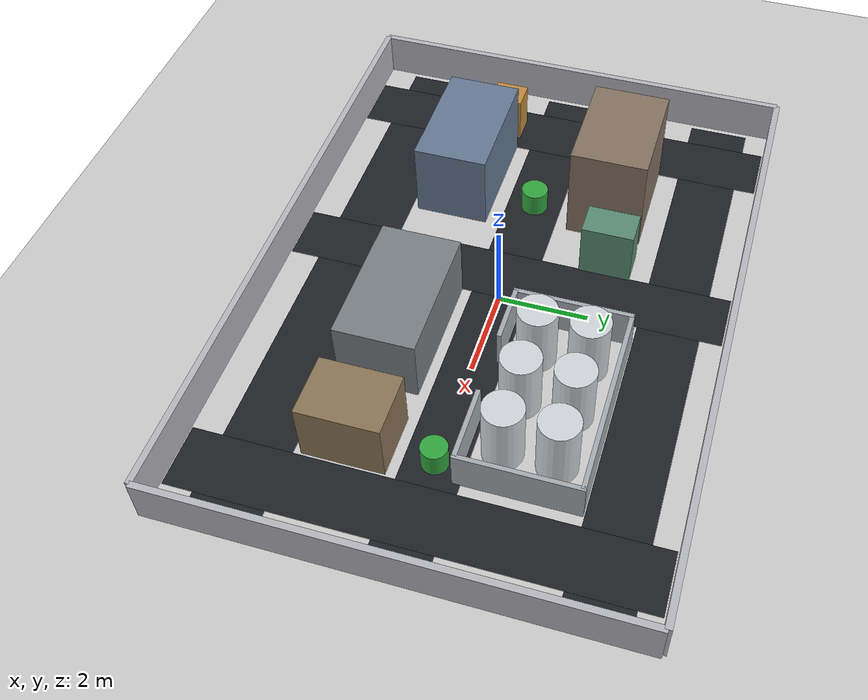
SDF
<?xml version="1.0"?>
<sdf version="1.6">
  <world name="landerpi_city_industrial_world">
    <include><uri>model://sun</uri></include>
    <include><uri>model://ground_plane</uri></include>
    <physics type="ode">
      <real_time_update_rate>1000</real_time_update_rate>
      <max_step_size>0.001</max_step_size>
    </physics>
    <gui fullscreen="0">
      <camera name="city_overview"><pose>0 -13 14 0 0.72 1.57</pose></camera>
    </gui>

    <!-- Asphalt strips are visual landmarks; LiDAR mapping uses the raised geometry below. -->
    <model name="roads"><static>true</static><link name="link">
      <visual name="south_road"><pose>0 -3.5 0.006 0 0 0</pose><geometry><box><size>13.6 1.5 0.01</size></box></geometry><material><ambient>0.12 0.13 0.15 1</ambient></material></visual>
      <visual name="middle_road"><pose>0 0 0.007 0 0 0</pose><geometry><box><size>13.6 1.25 0.01</size></box></geometry><material><ambient>0.12 0.13 0.15 1</ambient></material></visual>
      <visual name="north_road"><pose>0 3.75 0.006 0 0 0</pose><geometry><box><size>13.6 1.35 0.01</size></box></geometry><material><ambient>0.12 0.13 0.15 1</ambient></material></visual>
      <visual name="west_road"><pose>-5.55 0 0.008 0 0 0</pose><geometry><box><size>1.35 9.8 0.01</size></box></geometry><material><ambient>0.12 0.13 0.15 1</ambient></material></visual>
      <visual name="central_road"><pose>-0.7 0 0.009 0 0 0</pose><geometry><box><size>1.30 9.8 0.01</size></box></geometry><material><ambient>0.12 0.13 0.15 1</ambient></material></visual>
      <visual name="east_road"><pose>5.65 0 0.008 0 0 0</pose><geometry><box><size>1.35 9.8 0.01</size></box></geometry><material><ambient>0.12 0.13 0.15 1</ambient></material></visual>
    </link></model>

    <!-- Outer city boundary. -->
    <model name="north_boundary"><static>true</static><pose>0 5 0.5 0 0 0</pose><link name="link"><collision name="c"><geometry><box><size>14 0.14 1.0</size></box></geometry></collision><visual name="v"><geometry><box><size>14 0.14 1.0</size></box></geometry><material><ambient>0.72 0.72 0.75 1</ambient></material></visual></link></model>
    <model name="south_boundary"><static>true</static><pose>0 -5 0.5 0 0 0</pose><link name="link"><collision name="c"><geometry><box><size>14 0.14 1.0</size></box></geometry></collision><visual name="v"><geometry><box><size>14 0.14 1.0</size></box></geometry><material><ambient>0.72 0.72 0.75 1</ambient></material></visual></link></model>
    <model name="east_boundary"><static>true</static><pose>7 0 0.5 0 0 0</pose><link name="link"><collision name="c"><geometry><box><size>0.14 10 1.0</size></box></geometry></collision><visual name="v"><geometry><box><size>0.14 10 1.0</size></box></geometry><material><ambient>0.72 0.72 0.75 1</ambient></material></visual></link></model>
    <model name="west_boundary"><static>true</static><pose>-7 0 0.5 0 0 0</pose><link name="link"><collision name="c"><geometry><box><size>0.14 10 1.0</size></box></geometry></collision><visual name="v"><geometry><box><size>0.14 10 1.0</size></box></geometry><material><ambient>0.72 0.72 0.75 1</ambient></material></visual></link></model>

    <!-- Urban district: building footprints create the strong black contours in RViz. -->
    <model name="office_west_south"><static>true</static><pose>-3.55 -1.78 0.9 0 0 0</pose><link name="link"><collision name="c"><geometry><box><size>2.75 1.65 1.8</size></box></geometry></collision><visual name="v"><geometry><box><size>2.75 1.65 1.8</size></box></geometry><material><ambient>0.40 0.48 0.58 1</ambient></material></visual></link></model>
    <model name="office_west_north"><static>true</static><pose>-3.70 1.75 1.15 0 0 0</pose><link name="link"><collision name="c"><geometry><box><size>2.45 1.70 2.3</size></box></geometry></collision><visual name="v"><geometry><box><size>2.45 1.70 2.3</size></box></geometry><material><ambient>0.52 0.45 0.38 1</ambient></material></visual></link></model>
    <model name="warehouse_center_south"><static>true</static><pose>1.45 -1.72 0.75 0 0 0</pose><link name="link"><collision name="c"><geometry><box><size>3.00 1.75 1.5</size></box></geometry></collision><visual name="v"><geometry><box><size>3.00 1.75 1.5</size></box></geometry><material><ambient>0.48 0.50 0.52 1</ambient></material></visual></link></model>
    <model name="warehouse_east_south"><static>true</static><pose>4.25 -1.72 0.7 0 0 0</pose><link name="link"><collision name="c"><geometry><box><size>1.35 1.75 1.4</size></box></geometry></collision><visual name="v"><geometry><box><size>1.35 1.75 1.4</size></box></geometry><material><ambient>0.55 0.46 0.34 1</ambient></material></visual></link></model>

    <!-- Small roadside structures create varied map outlines. -->
    <model name="shop_1"><static>true</static><pose>-5.55 -1.35 0.55 0 0 0</pose><link name="link"><collision name="c"><geometry><box><size>0.65 0.75 1.1</size></box></geometry></collision><visual name="v"><geometry><box><size>0.65 0.75 1.1</size></box></geometry><material><ambient>0.76 0.55 0.25 1</ambient></material></visual></link></model>
    <model name="shop_2"><static>true</static><pose>-5.55 1.30 0.55 0 0 0</pose><link name="link"><collision name="c"><geometry><box><size>0.65 0.90 1.1</size></box></geometry></collision><visual name="v"><geometry><box><size>0.65 0.90 1.1</size></box></geometry><material><ambient>0.76 0.55 0.25 1</ambient></material></visual></link></model>
    <model name="utility_building"><static>true</static><pose>-1.70 2.05 0.65 0 0 0</pose><link name="link"><collision name="c"><geometry><box><size>0.75 1.15 1.3</size></box></geometry></collision><visual name="v"><geometry><box><size>0.75 1.15 1.3</size></box></geometry><material><ambient>0.35 0.55 0.45 1</ambient></material></visual></link></model>

    <!-- Industrial tank farm, enclosed by a fence with a south-side entrance. -->
    <model name="tank_farm_north_fence"><static>true</static><pose>2.55 3.00 0.45 0 0 0</pose><link name="link"><collision name="c"><geometry><box><size>4.30 0.10 0.9</size></box></geometry></collision><visual name="v"><geometry><box><size>4.30 0.10 0.9</size></box></geometry><material><ambient>0.65 0.68 0.70 1</ambient></material></visual></link></model>
    <model name="tank_farm_west_fence"><static>true</static><pose>0.40 1.75 0.45 0 0 0</pose><link name="link"><collision name="c"><geometry><box><size>0.10 2.60 0.9</size></box></geometry></collision><visual name="v"><geometry><box><size>0.10 2.60 0.9</size></box></geometry><material><ambient>0.65 0.68 0.70 1</ambient></material></visual></link></model>
    <model name="tank_farm_east_fence"><static>true</static><pose>4.70 1.75 0.45 0 0 0</pose><link name="link"><collision name="c"><geometry><box><size>0.10 2.60 0.9</size></box></geometry></collision><visual name="v"><geometry><box><size>0.10 2.60 0.9</size></box></geometry><material><ambient>0.65 0.68 0.70 1</ambient></material></visual></link></model>
    <model name="tank_farm_south_fence_left"><static>true</static><pose>1.05 0.50 0.45 0 0 0</pose><link name="link"><collision name="c"><geometry><box><size>1.30 0.10 0.9</size></box></geometry></collision><visual name="v"><geometry><box><size>1.30 0.10 0.9</size></box></geometry><material><ambient>0.65 0.68 0.70 1</ambient></material></visual></link></model>
    <model name="tank_farm_south_fence_right"><static>true</static><pose>3.90 0.50 0.45 0 0 0</pose><link name="link"><collision name="c"><geometry><box><size>1.60 0.10 0.9</size></box></geometry></collision><visual name="v"><geometry><box><size>1.60 0.10 0.9</size></box></geometry><material><ambient>0.65 0.68 0.70 1</ambient></material></visual></link></model>

    <model name="oil_tank_1"><static>true</static><pose>1.30 1.20 0.75 0 0 0</pose><link name="link"><collision name="c"><geometry><cylinder><radius>0.43</radius><length>1.50</length></cylinder></geometry></collision><visual name="v"><geometry><cylinder><radius>0.43</radius><length>1.50</length></cylinder></geometry><material><ambient>0.82 0.84 0.86 1</ambient></material></visual></link></model>
    <model name="oil_tank_2"><static>true</static><pose>2.55 1.20 0.75 0 0 0</pose><link name="link"><collision name="c"><geometry><cylinder><radius>0.43</radius><length>1.50</length></cylinder></geometry></collision><visual name="v"><geometry><cylinder><radius>0.43</radius><length>1.50</length></cylinder></geometry><material><ambient>0.82 0.84 0.86 1</ambient></material></visual></link></model>
    <model name="oil_tank_3"><static>true</static><pose>3.80 1.20 0.75 0 0 0</pose><link name="link"><collision name="c"><geometry><cylinder><radius>0.43</radius><length>1.50</length></cylinder></geometry></collision><visual name="v"><geometry><cylinder><radius>0.43</radius><length>1.50</length></cylinder></geometry><material><ambient>0.82 0.84 0.86 1</ambient></material></visual></link></model>
    <model name="oil_tank_4"><static>true</static><pose>1.30 2.30 0.75 0 0 0</pose><link name="link"><collision name="c"><geometry><cylinder><radius>0.43</radius><length>1.50</length></cylinder></geometry></collision><visual name="v"><geometry><cylinder><radius>0.43</radius><length>1.50</length></cylinder></geometry><material><ambient>0.82 0.84 0.86 1</ambient></material></visual></link></model>
    <model name="oil_tank_5"><static>true</static><pose>2.55 2.30 0.75 0 0 0</pose><link name="link"><collision name="c"><geometry><cylinder><radius>0.43</radius><length>1.50</length></cylinder></geometry></collision><visual name="v"><geometry><cylinder><radius>0.43</radius><length>1.50</length></cylinder></geometry><material><ambient>0.82 0.84 0.86 1</ambient></material></visual></link></model>
    <model name="oil_tank_6"><static>true</static><pose>3.80 2.30 0.75 0 0 0</pose><link name="link"><collision name="c"><geometry><cylinder><radius>0.43</radius><length>1.50</length></cylinder></geometry></collision><visual name="v"><geometry><cylinder><radius>0.43</radius><length>1.50</length></cylinder></geometry><material><ambient>0.82 0.84 0.86 1</ambient></material></visual></link></model>

    <!-- Traffic islands make the road map less rectangular and force local avoidance. -->
    <model name="traffic_island_west"><static>true</static><pose>-3.0 0 0.28 0 0 0</pose><link name="link"><collision name="c"><geometry><cylinder><radius>0.30</radius><length>0.56</length></cylinder></geometry></collision><visual name="v"><geometry><cylinder><radius>0.30</radius><length>0.56</length></cylinder></geometry><material><ambient>0.20 0.65 0.25 1</ambient></material></visual></link></model>
    <model name="traffic_island_east"><static>true</static><pose>4.40 0 0.28 0 0 0</pose><link name="link"><collision name="c"><geometry><cylinder><radius>0.28</radius><length>0.56</length></cylinder></geometry></collision><visual name="v"><geometry><cylinder><radius>0.28</radius><length>0.56</length></cylinder></geometry><material><ambient>0.20 0.65 0.25 1</ambient></material></visual></link></model>
  </world>
</sdf>
